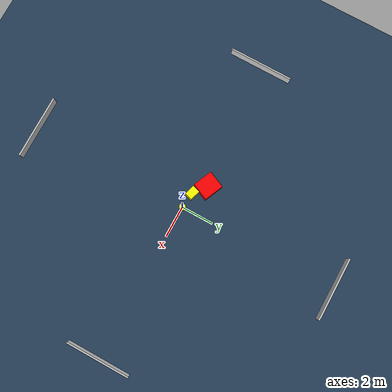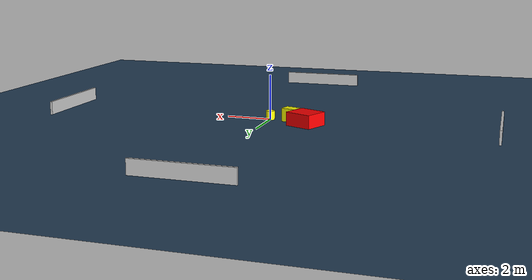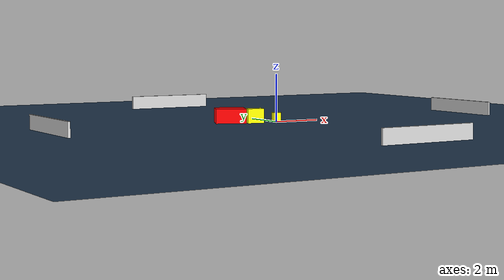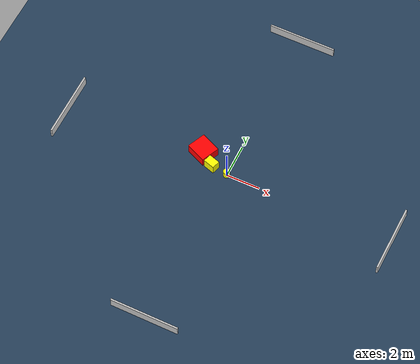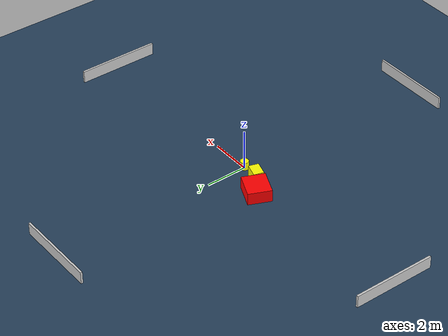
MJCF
<?xml version="1.0" ?>
<mujoco model="generated_environment">
  <option timestep="0.01" integrator="RK4" cone="elliptic"/>
  <default>
    <geom density="1"/>
  </default>
  <asset>
    <texture builtin="gradient" height="3072" name="skybox" rgb1="0.3 0.5 0.7" rgb2="0 0 0" type="skybox" width="512"/>
    <texture builtin="checker" height="300" name="groundplane" rgb1="0.2 0.3 0.4" rgb2="0.1 0.2 0.3" type="2d" width="300"/>
    <material name="groundplane" reflectance="0.2" texrepeat="5 5" texture="groundplane"/>
  </asset>
  <worldbody>
    <light dir="0 0 -1" directional="true" pos="0 0 1.5"/>
    <geom condim="3" friction="0.5 0.005 0.001" material="groundplane" name="floor" pos="0 0 0" size="0 0 0.05" type="plane"/>
    <body name="walls">
      <geom name="wall_1" condim="4" pos="-10.0 0.0 0.3" rgba="0.800000011920929 0.800000011920929 0.800000011920929 1.0" size="0.05 2.0 0.3" type="box"/>
      <geom name="wall_2" condim="4" pos="10.0 0.0 0.3" rgba="0.800000011920929 0.800000011920929 0.800000011920929 1.0" size="0.05 2.0 0.3" type="box"/>
      <geom name="wall_3" condim="4" pos="0.0 -10.0 0.3" rgba="0.800000011920929 0.800000011920929 0.800000011920929 1.0" size="2.0 0.05 0.3" type="box"/>
      <geom name="wall_4" condim="4" pos="0.0 10.0 0.3" rgba="0.800000011920929 0.800000011920929 0.800000011920929 1.0" size="2.0 0.05 0.3" type="box"/>
    </body>
    <body name="robot">
      <joint name="joint_x" type="slide" pos="0 0 0" axis="1 0 0"/>
      <joint name="joint_y" type="slide" pos="0 0 0" axis="0 1 0"/>
      <geom name="robot" type="cylinder" pos="0.0 0.0 0.2" size="0.2 0.2 0.0" mass="5.0" friction="1.0 0.005 0.0001" condim="4" rgba="1.0 1.0 0.0 1.0"/>
    </body>
    <body name="obstacle_1_movable">
      <geom name="obstacle_1_movable" condim="4" pos="-0.9924739399843348 0.11735955679322997 0.3" euler="0 0 252.8972348080704" friction="0.0 0.005 0.001" rgba="1.0 1.0 0.0 1.0" size="0.24572729311146813 0.33827982302706905 0.3" type="box" mass="0.1"/>
      <joint type="free"/>
    </body>
    <body name="obstacle_2_static">
      <geom name="obstacle_2_static" condim="4" pos="-1.81698955662338 0.7405527853908144 0.3" euler="0 0 246.06647791023966" friction="0.0 0.005 0.001" rgba="1.0 0.0 0.0 1.0" size="0.5611909893283782 0.6248969489356333 0.3" type="box"/>
    </body>
  </worldbody>
  <actuator>
    <motor name="actuator_x" joint="joint_x" gear="1" ctrlrange="-1 1"/>
    <motor name="actuator_y" joint="joint_y" gear="1" ctrlrange="-1 1"/>
  </actuator>
</mujoco>
